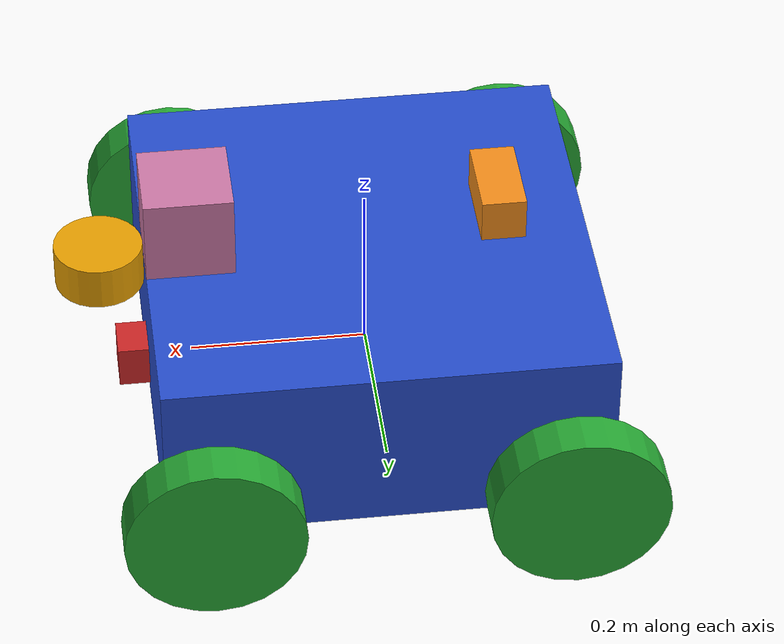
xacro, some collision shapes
<?xml version='1.0'?>

<robot name="roverbot" xmlns:xacro="http://www.ros.org/wiki/xacro">
	<xacro:property name="robot_name" value="roverbot" />
	<xacro:property name="robot_chassis_mass" value="15"/>
	<xacro:property name="robot_chassis_length" value="0.2"/>
	<xacro:property name="robot_chassis_radius" value="0.25"/>
	<xacro:property name="robot_caster_wheel_radius" value="0.05"/>
	<xacro:property name="robot_caster_wheel_radius_collision" value="0.0499"/>

	<xacro:property name="robot_wheel_mass" value="5"/>
	<xacro:property name="robot_wheel_length" value="0.05"/>
	<xacro:property name="robot_wheel_radius" value="0.1"/>

	<xacro:property name="camera_mass" value="0.1"/>
	<xacro:property name="hokoyu_mass" value="1e-5"/>

	<!-- Make Chassis of Bot -->
	<link name="chassis">
		<pose>0 0 0.1 0 0 0</pose>

		<inertial>
			<mass value="${robot_chassis_mass}"/>
      		<origin xyz="0.0 0 0" rpy=" 0 0 0"/>

      		<inertia
      			ixx="0.147116667" ixy="0" ixz="0"
      			iyy="0.334951167" iyz="0"
      			izz="0.3978345"
      		/>
		</inertial>

		<collision name="collision">
			<origin xyz="0 0 0.05" rpy=" 0 0 0"/>
			<geometry>
				<box size="0.5 0.5 0.2"/>
			</geometry>
		</collision>

		<visual name="chassis_visual">
			<origin xyz="0 0 0.05" rpy=" 0 0 0"/>
			<geometry>
				<box size="0.5 0.5 0.2"/>
			</geometry>

		</visual>

	</link>

	<!-- Right Wheel Back -->
	<link name="right_wheel_back">
		<inertial>
			<mass value="${robot_wheel_mass}"/>
			<origin xyz="0 0 0" rpy="0 1.5707 1.5707"/>
			<inertia
				ixx="0.1" ixy="0.0" ixz="0.0"
				iyy="0.1" iyz="0.0"
				izz="0.1"
			/>
		</inertial>

		<visual>
			<origin xyz="0 0 0" rpy="0 1.5707 1.5707"/>
			<geometry>
				<cylinder radius="${robot_wheel_radius}" length="${robot_wheel_length}"/>
			</geometry>
		</visual>

		<collision>
			<origin xyz="0 0 0" rpy="0 1.5707 1.5707"/>
			<geometry>
				<cylinder radius="${robot_wheel_radius}" length="${robot_wheel_length}"/>
			</geometry>
		</collision>

	</link>

	<!-- Right Wheel Front-->
	<link name="right_wheel_front">
		<inertial>
			<mass value="${robot_wheel_mass}"/>
			<origin xyz="0 0 0" rpy="0 1.5707 1.5707"/>
			<inertia
				ixx="0.1" ixy="0.0" ixz="0.0"
				iyy="0.1" iyz="0.0"
				izz="0.1"
			/>
		</inertial>

		<visual>
			<origin xyz="0 0 0" rpy="0 1.5707 1.5707"/>
			<geometry>
				<cylinder radius="${robot_wheel_radius}" length="${robot_wheel_length}"/>
			</geometry>
		</visual>

		<collision>
			<origin xyz="0 0 0" rpy="0 1.5707 1.5707"/>
			<geometry>
				<cylinder radius="${robot_wheel_radius}" length="${robot_wheel_length}"/>
			</geometry>
		</collision>

	</link>

	<!-- Left wheel Back-->
	<link name="left_wheel_back">
		<inertial>
			<mass value="${robot_wheel_mass}"/>
			<origin xyz="0 0 0" rpy="0 1.5707 1.5707"/>
			<inertia
				ixx="0.1" ixy="0.0" ixz="0.0"
				iyy="0.1" iyz="0.0"
				izz="0.1"
			/>
		</inertial>

		<visual>
			<origin xyz="0 0 0" rpy="0 1.5707 1.5707"/>
			<geometry>
				<cylinder radius="${robot_wheel_radius}" length="${robot_wheel_length}"/>
			</geometry>
		</visual>

		<collision>
			<origin xyz="0 0 0" rpy="0 1.5707 1.5707"/>
			<geometry>
				<cylinder radius="${robot_wheel_radius}" length="${robot_wheel_length}"/>
			</geometry>
		</collision>

	</link>

	<!-- Left wheel Front-->
	<link name="left_wheel_front">
		<inertial>
			<mass value="${robot_wheel_mass}"/>
			<origin xyz="0 0 0" rpy="0 1.5707 1.5707"/>
			<inertia
				ixx="0.1" ixy="0.0" ixz="0.0"
				iyy="0.1" iyz="0.0"
				izz="0.1"
			/>
		</inertial>

		<visual>
			<origin xyz="0 0 0" rpy="0 1.5707 1.5707"/>
			<geometry>
				<cylinder radius="${robot_wheel_radius}" length="${robot_wheel_length}"/>
			</geometry>
		</visual>

		<collision>
			<origin xyz="0 0 0" rpy="0 1.5707 1.5707"/>
			<geometry>
				<cylinder radius="${robot_wheel_radius}" length="${robot_wheel_length}"/>
			</geometry>
		</collision>

	</link>

	<!-- CAMERA LINK -->
	<link name="camera">
		<inertial>
			<mass value="${camera_mass}"/>
			<origin xyz="0 0 0" rpy="0 0 0"/>
			<inertia
		        ixx="1e-6" ixy="0.0" ixz="0.0"
		        iyy="1e-6" iyz="0.0"
		        izz="1e-6"
		      />
		</inertial>

		<visual>
			<origin xyz="0 0 0" rpy="0 0 0"/>
			<geometry>
				<box size="0.05 0.05 0.05"/>
			</geometry>
		</visual>

		<collision>
			<origin xyz="0 0 0" rpy="0 0 0"/>
			<geometry>
				<box size="0.05 0.05 0.05"/>
			</geometry>
		</collision>
	</link>

	<!-- LIDAR LINK -->
	<link name="hokuyo">
		<inertial>
			<mass value="${hokoyu_mass}"/>
			<origin xyz="0 0 0" rpy="0 0 0"/>

			<inertia
		        ixx="1e-6" ixy="0.0" ixz="0.0"
		        iyy="1e-6" iyz="0.0"
		        izz="1e-6"
		      />
		</inertial>

		<visual>
			<origin xyz="0 0 0" rpy="0 0 0"/>
			<geometry>
				<mesh filename="package://roverbot/meshes/hokuyo.dae"/>
			</geometry>
		</visual>

		<collision>
			<origin xyz="0 0 0" rpy="0 0 0"/>
			<geometry>
				<box size="0.1 0.1 0.1"/>
			</geometry>
		</collision>
	</link>

	<!-- IMU LINK -->
	<link name="imu_link">
    <visual>
      <geometry>
        <box size="0.15 0.15 0.05"/>
      </geometry>
    </visual>
    <collision>
      <geometry>
        <box size="0.15 0.15 0.05"/>
      </geometry>
    </collision>
    <inertial>
      <mass value="1e-5" />
      <origin xyz="0 0 0" rpy="0 0 0"/>
      <inertia ixx="1e-6" ixy="0" ixz="0" iyy="1e-6" iyz="0" izz="1e-6" />
    </inertial>
  </link>

   	<!-- GPS LINK -->
   	  <link name="gps_link">
    <collision>
      <origin xyz="0 0 0.1" rpy="0 0 0"/>
      <geometry>
        <box size="0.1 0.1 0.1"/>
      </geometry>
    </collision>

    <visual>
      <origin xyz="-0.1 0 0.1" rpy="0 0 0"/>
      <geometry>
        <cylinder radius="0.05" length="0.05"/>
      </geometry>
    </visual>

    <inertial>
      <origin xyz="0 0 0.1" rpy="0 0 0"/>
      <mass value="1"/>
      <inertia
        ixx="1.0" ixy="0.0" ixz="0.0"
        iyy="1.0" iyz="0.0"
        izz="1.0"/>
    </inertial>
  </link>

  	<!-- ZED 2 LINK -->
  	 <link name="ZED2">
    <visual>
      <geometry>
        <box size="0.05 0.1 0.05"/>
      </geometry>
    </visual>
    <collision>
      <geometry>
        <box size="0.05 0.1 0.05"/>
      </geometry>
    </collision>
    <inertial>
      <mass value="1e-5" />
      <origin xyz="0 0 0" rpy="0 0 0"/>
      <inertia ixx="1e-6" ixy="0" ixz="0" iyy="1e-6" iyz="0" izz="1e-6" />
    </inertial>
  </link>

	<!-- Project center to the ground -->
	<link name="robot_footprint"></link>

	<!-- Define Joints -->

	<!-- Right Wheel Joint Back-->
	<joint type="continuous" name="right_wheel_hinge_back">
	    <origin xyz="-0.2 -0.30 0" rpy="0 0 0" />
	    <parent link="chassis"/>
	    <child link="right_wheel_back" />
	    <axis xyz="0 1 0" rpy="0 0 0" />
	    <limit effort="10000" velocity="1000" />
	    <dynamics damping="1.0" friction="1.0" />
	</joint>

	<!-- Right Wheel Joint Front-->
	<joint type="continuous" name="right_wheel_hinge_front">
	    <origin xyz="0.2 -0.30 0" rpy="0 0 0" />
	    <parent link="chassis"/>
	    <child link="right_wheel_front" />
	    <axis xyz="0 1 0" rpy="0 0 0" />
	    <limit effort="10000" velocity="1000" />
	    <dynamics damping="1.0" friction="1.0" />
	</joint>

	<!-- Left Wheel Joint Back-->
	<joint type="continuous" name="left_wheel_hinge_back">
	    <origin xyz="-0.2 0.30 0" rpy="0 0 0" />
	    <parent link="chassis"/>
	    <child link="left_wheel_back" />
	    <axis xyz="0 1 0" rpy="0 0 0" />
	    <limit effort="10000" velocity="1000" />
	    <dynamics damping="1.0" friction="1.0" />
	</joint>

	<!-- Left Wheel Joint Front-->
	<joint type="continuous" name="left_wheel_hinge_front">
	<origin xyz="0.2 0.30 0" rpy="0 0 0" />
	<parent link="chassis"/>
	<child link="left_wheel_front" />
	<axis xyz="0 1 0" rpy="0 0 0" />
	<limit effort="10000" velocity="1000" />
	<dynamics damping="1.0" friction="1.0" />
	</joint>

	<!-- CAMERA JOINT -->
	<joint name="camera_joint" type="fixed">
	<origin xyz="0.26 0 0" rpy="0 0 0" />
	<parent link="chassis"/>
	<child link="camera" />
	<axis xyz="0 1 0"/>
	</joint>

	<!-- LIDAR JOINT -->
	<joint name="hokuyo_joint" type="fixed">
	    <origin xyz="0.2 0 0.2" rpy="0 0 0" />
	    <parent link="chassis"/>
	    <child link="hokuyo" />
	    <axis xyz="0 1 0"/>
	</joint>

	<!-- IMU JOINT -->
	<joint name="imu_joint" type="fixed">
    	<origin xyz="0.04 0 0.12" rpy="0 0 0" />
    	<parent link="chassis"/>
    	<child link="imu_link" />
    	<axis xyz="0 1 0"/>
  	</joint>

  	<!--GPS JOINT -->
  	<joint name="gps_joint" type="fixed">
    	<origin xyz="0.4 0.0 0.04" rpy="0 0 0" />
    	<parent link="robot_footprint"/>
    	<child link="gps_link" />
   	 <axis xyz="0 1 0"/>
  	</joint>

  	<!-- ZED2 JOINT -->
  	<joint name="ZED2_joint" type="fixed">
  	<origin xyz ="-0.15 0 0.195" rpy ="0 0 0" />
  	<parent link="robot_footprint"/>
  	<child link ="ZED2" />
  	<axis xyz ="0 1 0" />
  	</joint>

	<joint name="robot_footprint_joint" type="fixed">
		<origin xyz="0 0 0" rpy="0 0 0" />
		<parent link="robot_footprint"/>
		<child link="chassis" />
	</joint>

	<!-- Color of bot -->
	<gazebo reference="left_wheel_front">
		<material>Gazebo/Green</material>
		<kp>1000000.0</kp> <!-- kp and kd for rubber -->
		<kd>100.0</kd>
		<mu1>1.0</mu1>
		<mu2>1.0</mu2>
		<maxVel>1.0</maxVel>
		<minDepth>0.00</minDepth>
	</gazebo>

	<gazebo reference="left_wheel_back">
		<material>Gazebo/Green</material>
		<kp>1000000.0</kp> <!-- kp and kd for rubber -->
		<kd>100.0</kd>
		<mu1>1.0</mu1>
		<mu2>1.0</mu2>
		<maxVel>1.0</maxVel>
		<minDepth>0.00</minDepth>
	</gazebo>

	<gazebo reference="right_wheel_front">
		<material>Gazebo/Green</material>
		<kp>1000000.0</kp> <!-- kp and kd for rubber -->
		<kd>100.0</kd>
		<mu1>1.0</mu1>
		<mu2>1.0</mu2>
		<maxVel>1.0</maxVel>
		<minDepth>0.00</minDepth>
	</gazebo>
	<gazebo reference="right_wheel_back">
		<material>Gazebo/Green</material>
		<kp>1000000.0</kp> <!-- kp and kd for rubber -->
		<kd>100.0</kd>
		<mu1>1.0</mu1>
		<mu2>1.0</mu2>
		<maxVel>1.0</maxVel>
		<minDepth>0.00</minDepth>
	</gazebo>

	<gazebo reference="camera">
		<material>Gazebo/Red</material>
	</gazebo>

	<gazebo reference="ZED2">
		<material>Gazebo/Orange</material>
	</gazebo>

	<gazebo reference="chassis">
		<material>Gazebo/Blue</material>
	</gazebo>

	<!-- Sensors, Camera and Lidar Simulation -->
	<xacro:include filename="$(find roverbot)/urdf/roverbot.gazebo" />

</robot>
